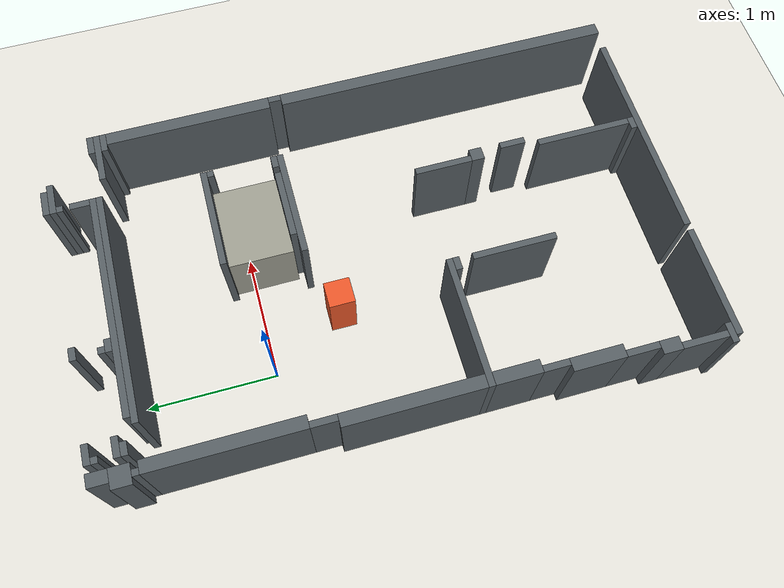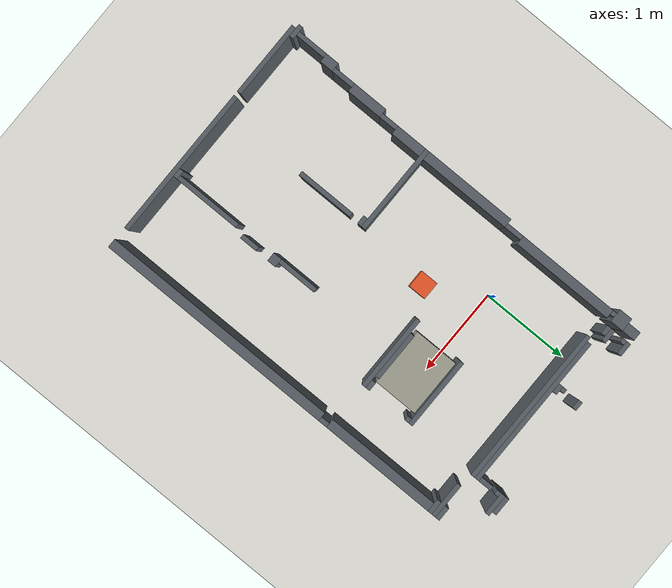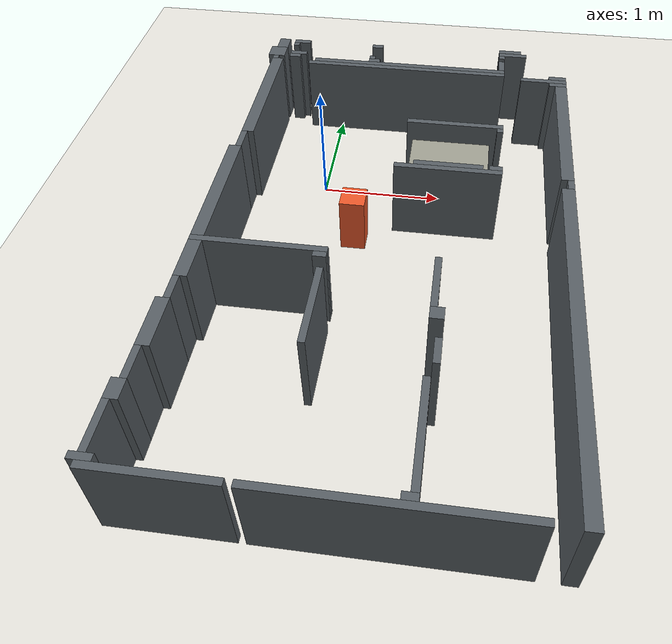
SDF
<sdf version="1.6">
 <world name="classroom_20261030_stress">
  <gravity>0 0 -9.81</gravity>
  <physics name="default_physics" default="true" type="ode">
   <max_step_size>0.001</max_step_size>
   <real_time_factor>1</real_time_factor>
   <real_time_update_rate>1000</real_time_update_rate>
  </physics>
  <scene><ambient>0.6 0.6 0.6 1</ambient><background>0.8 0.85 0.9 1</background><shadows>false</shadows></scene>
  <model name="ground_plane">
   <static>true</static>
   <link name="floor">
    <collision name="collision">
     <geometry><plane><normal>0 0 1</normal><size>20 20</size></plane></geometry>
    </collision>
    <visual name="visual">
     <geometry><plane><normal>0 0 1</normal><size>20 20</size></plane></geometry>
     <material><ambient>0.90 0.89 0.86 1</ambient><diffuse>0.90 0.89 0.86 1</diffuse></material>
    </visual>
   </link>
  </model>
  <model name="map_occupied_cells">
   <static>true</static>
   <link name="occupied_00">
    <pose>1.550000 1.375000 0.350000 0.000000 0.000000 0.000000</pose>
    <collision name="collision">
     <geometry><box><size>0.200000 0.050000 0.700000</size></box></geometry>
    </collision>
    <visual name="visual">
     <geometry><box><size>0.200000 0.050000 0.700000</size></box></geometry>
     <material><ambient>0.34 0.37 0.39 1</ambient><diffuse>0.34 0.37 0.39 1</diffuse></material>
    </visual>
   </link>
   <link name="occupied_01">
    <pose>-0.600000 1.275000 0.350000 0.000000 0.000000 0.000000</pose>
    <collision name="collision">
     <geometry><box><size>0.100000 0.150000 0.700000</size></box></geometry>
    </collision>
    <visual name="visual">
     <geometry><box><size>0.100000 0.150000 0.700000</size></box></geometry>
     <material><ambient>0.34 0.37 0.39 1</ambient><diffuse>0.34 0.37 0.39 1</diffuse></material>
    </visual>
   </link>
   <link name="occupied_02">
    <pose>-0.425000 1.325000 0.350000 0.000000 0.000000 0.000000</pose>
    <collision name="collision">
     <geometry><box><size>0.150000 0.050000 0.700000</size></box></geometry>
    </collision>
    <visual name="visual">
     <geometry><box><size>0.150000 0.050000 0.700000</size></box></geometry>
     <material><ambient>0.34 0.37 0.39 1</ambient><diffuse>0.34 0.37 0.39 1</diffuse></material>
    </visual>
   </link>
   <link name="occupied_03">
    <pose>0.300000 1.325000 0.350000 0.000000 0.000000 0.000000</pose>
    <collision name="collision">
     <geometry><box><size>0.100000 0.050000 0.700000</size></box></geometry>
    </collision>
    <visual name="visual">
     <geometry><box><size>0.100000 0.050000 0.700000</size></box></geometry>
     <material><ambient>0.34 0.37 0.39 1</ambient><diffuse>0.34 0.37 0.39 1</diffuse></material>
    </visual>
   </link>
   <link name="occupied_04">
    <pose>1.575000 1.325000 0.350000 0.000000 0.000000 0.000000</pose>
    <collision name="collision">
     <geometry><box><size>0.250000 0.050000 0.700000</size></box></geometry>
    </collision>
    <visual name="visual">
     <geometry><box><size>0.250000 0.050000 0.700000</size></box></geometry>
     <material><ambient>0.34 0.37 0.39 1</ambient><diffuse>0.34 0.37 0.39 1</diffuse></material>
    </visual>
   </link>
   <link name="occupied_05">
    <pose>-0.475000 1.275000 0.350000 0.000000 0.000000 0.000000</pose>
    <collision name="collision">
     <geometry><box><size>0.050000 0.050000 0.700000</size></box></geometry>
    </collision>
    <visual name="visual">
     <geometry><box><size>0.050000 0.050000 0.700000</size></box></geometry>
     <material><ambient>0.34 0.37 0.39 1</ambient><diffuse>0.34 0.37 0.39 1</diffuse></material>
    </visual>
   </link>
   <link name="occupied_06">
    <pose>1.475000 1.275000 0.350000 0.000000 0.000000 0.000000</pose>
    <collision name="collision">
     <geometry><box><size>0.050000 0.050000 0.700000</size></box></geometry>
    </collision>
    <visual name="visual">
     <geometry><box><size>0.050000 0.050000 0.700000</size></box></geometry>
     <material><ambient>0.34 0.37 0.39 1</ambient><diffuse>0.34 0.37 0.39 1</diffuse></material>
    </visual>
   </link>
   <link name="occupied_07">
    <pose>-0.625000 1.125000 0.350000 0.000000 0.000000 0.000000</pose>
    <collision name="collision">
     <geometry><box><size>0.150000 0.150000 0.700000</size></box></geometry>
    </collision>
    <visual name="visual">
     <geometry><box><size>0.150000 0.150000 0.700000</size></box></geometry>
     <material><ambient>0.34 0.37 0.39 1</ambient><diffuse>0.34 0.37 0.39 1</diffuse></material>
    </visual>
   </link>
   <link name="occupied_08">
    <pose>1.475000 1.125000 0.350000 0.000000 0.000000 0.000000</pose>
    <collision name="collision">
     <geometry><box><size>0.050000 0.150000 0.700000</size></box></geometry>
    </collision>
    <visual name="visual">
     <geometry><box><size>0.050000 0.150000 0.700000</size></box></geometry>
     <material><ambient>0.34 0.37 0.39 1</ambient><diffuse>0.34 0.37 0.39 1</diffuse></material>
    </visual>
   </link>
   <link name="occupied_09">
    <pose>-0.425000 1.125000 0.350000 0.000000 0.000000 0.000000</pose>
    <collision name="collision">
     <geometry><box><size>0.150000 0.050000 0.700000</size></box></geometry>
    </collision>
    <visual name="visual">
     <geometry><box><size>0.150000 0.050000 0.700000</size></box></geometry>
     <material><ambient>0.34 0.37 0.39 1</ambient><diffuse>0.34 0.37 0.39 1</diffuse></material>
    </visual>
   </link>
   <link name="occupied_10">
    <pose>0.275000 1.125000 0.350000 0.000000 0.000000 0.000000</pose>
    <collision name="collision">
     <geometry><box><size>0.050000 0.050000 0.700000</size></box></geometry>
    </collision>
    <visual name="visual">
     <geometry><box><size>0.050000 0.050000 0.700000</size></box></geometry>
     <material><ambient>0.34 0.37 0.39 1</ambient><diffuse>0.34 0.37 0.39 1</diffuse></material>
    </visual>
   </link>
   <link name="occupied_11">
    <pose>-0.450000 1.075000 0.350000 0.000000 0.000000 0.000000</pose>
    <collision name="collision">
     <geometry><box><size>0.100000 0.050000 0.700000</size></box></geometry>
    </collision>
    <visual name="visual">
     <geometry><box><size>0.100000 0.050000 0.700000</size></box></geometry>
     <material><ambient>0.34 0.37 0.39 1</ambient><diffuse>0.34 0.37 0.39 1</diffuse></material>
    </visual>
   </link>
   <link name="occupied_12">
    <pose>0.300000 1.075000 0.350000 0.000000 0.000000 0.000000</pose>
    <collision name="collision">
     <geometry><box><size>0.100000 0.050000 0.700000</size></box></geometry>
    </collision>
    <visual name="visual">
     <geometry><box><size>0.100000 0.050000 0.700000</size></box></geometry>
     <material><ambient>0.34 0.37 0.39 1</ambient><diffuse>0.34 0.37 0.39 1</diffuse></material>
    </visual>
   </link>
   <link name="occupied_13">
    <pose>-0.625000 1.025000 0.350000 0.000000 0.000000 0.000000</pose>
    <collision name="collision">
     <geometry><box><size>0.050000 0.050000 0.700000</size></box></geometry>
    </collision>
    <visual name="visual">
     <geometry><box><size>0.050000 0.050000 0.700000</size></box></geometry>
     <material><ambient>0.34 0.37 0.39 1</ambient><diffuse>0.34 0.37 0.39 1</diffuse></material>
    </visual>
   </link>
   <link name="occupied_14">
    <pose>0.625000 1.025000 0.350000 0.000000 0.000000 0.000000</pose>
    <collision name="collision">
     <geometry><box><size>1.750000 0.050000 0.700000</size></box></geometry>
    </collision>
    <visual name="visual">
     <geometry><box><size>1.750000 0.050000 0.700000</size></box></geometry>
     <material><ambient>0.34 0.37 0.39 1</ambient><diffuse>0.34 0.37 0.39 1</diffuse></material>
    </visual>
   </link>
   <link name="occupied_15">
    <pose>-0.600000 0.425000 0.350000 0.000000 0.000000 0.000000</pose>
    <collision name="collision">
     <geometry><box><size>0.100000 1.150000 0.700000</size></box></geometry>
    </collision>
    <visual name="visual">
     <geometry><box><size>0.100000 1.150000 0.700000</size></box></geometry>
     <material><ambient>0.34 0.37 0.39 1</ambient><diffuse>0.34 0.37 0.39 1</diffuse></material>
    </visual>
   </link>
   <link name="occupied_16">
    <pose>0.600000 0.975000 0.350000 0.000000 0.000000 0.000000</pose>
    <collision name="collision">
     <geometry><box><size>1.800000 0.050000 0.700000</size></box></geometry>
    </collision>
    <visual name="visual">
     <geometry><box><size>1.800000 0.050000 0.700000</size></box></geometry>
     <material><ambient>0.34 0.37 0.39 1</ambient><diffuse>0.34 0.37 0.39 1</diffuse></material>
    </visual>
   </link>
   <link name="occupied_17">
    <pose>1.975000 0.975000 0.350000 0.000000 0.000000 0.000000</pose>
    <collision name="collision">
     <geometry><box><size>0.150000 0.050000 0.700000</size></box></geometry>
    </collision>
    <visual name="visual">
     <geometry><box><size>0.150000 0.050000 0.700000</size></box></geometry>
     <material><ambient>0.34 0.37 0.39 1</ambient><diffuse>0.34 0.37 0.39 1</diffuse></material>
    </visual>
   </link>
   <link name="occupied_18">
    <pose>1.850000 0.925000 0.350000 0.000000 0.000000 0.000000</pose>
    <collision name="collision">
     <geometry><box><size>0.400000 0.050000 0.700000</size></box></geometry>
    </collision>
    <visual name="visual">
     <geometry><box><size>0.400000 0.050000 0.700000</size></box></geometry>
     <material><ambient>0.34 0.37 0.39 1</ambient><diffuse>0.34 0.37 0.39 1</diffuse></material>
    </visual>
   </link>
   <link name="occupied_19">
    <pose>1.975000 0.875000 0.350000 0.000000 0.000000 0.000000</pose>
    <collision name="collision">
     <geometry><box><size>0.150000 0.050000 0.700000</size></box></geometry>
    </collision>
    <visual name="visual">
     <geometry><box><size>0.150000 0.050000 0.700000</size></box></geometry>
     <material><ambient>0.34 0.37 0.39 1</ambient><diffuse>0.34 0.37 0.39 1</diffuse></material>
    </visual>
   </link>
   <link name="occupied_20">
    <pose>2.000000 0.200000 0.350000 0.000000 0.000000 0.000000</pose>
    <collision name="collision">
     <geometry><box><size>0.100000 1.300000 0.700000</size></box></geometry>
    </collision>
    <visual name="visual">
     <geometry><box><size>0.100000 1.300000 0.700000</size></box></geometry>
     <material><ambient>0.34 0.37 0.39 1</ambient><diffuse>0.34 0.37 0.39 1</diffuse></material>
    </visual>
   </link>
   <link name="occupied_21">
    <pose>1.100000 0.175000 0.350000 0.000000 0.000000 0.000000</pose>
    <collision name="collision">
     <geometry><box><size>0.800000 0.050000 0.700000</size></box></geometry>
    </collision>
    <visual name="visual">
     <geometry><box><size>0.800000 0.050000 0.700000</size></box></geometry>
     <material><ambient>0.34 0.37 0.39 1</ambient><diffuse>0.34 0.37 0.39 1</diffuse></material>
    </visual>
   </link>
   <link name="occupied_22">
    <pose>1.475000 0.125000 0.350000 0.000000 0.000000 0.000000</pose>
    <collision name="collision">
     <geometry><box><size>0.050000 0.050000 0.700000</size></box></geometry>
    </collision>
    <visual name="visual">
     <geometry><box><size>0.050000 0.050000 0.700000</size></box></geometry>
     <material><ambient>0.34 0.37 0.39 1</ambient><diffuse>0.34 0.37 0.39 1</diffuse></material>
    </visual>
   </link>
   <link name="occupied_23">
    <pose>-0.625000 -0.250000 0.350000 0.000000 0.000000 0.000000</pose>
    <collision name="collision">
     <geometry><box><size>0.050000 0.200000 0.700000</size></box></geometry>
    </collision>
    <visual name="visual">
     <geometry><box><size>0.050000 0.200000 0.700000</size></box></geometry>
     <material><ambient>0.34 0.37 0.39 1</ambient><diffuse>0.34 0.37 0.39 1</diffuse></material>
    </visual>
   </link>
   <link name="occupied_24">
    <pose>-0.650000 -0.875000 0.350000 0.000000 0.000000 0.000000</pose>
    <collision name="collision">
     <geometry><box><size>0.100000 1.050000 0.700000</size></box></geometry>
    </collision>
    <visual name="visual">
     <geometry><box><size>0.100000 1.050000 0.700000</size></box></geometry>
     <material><ambient>0.34 0.37 0.39 1</ambient><diffuse>0.34 0.37 0.39 1</diffuse></material>
    </visual>
   </link>
   <link name="occupied_25">
    <pose>1.075000 -0.375000 0.350000 0.000000 0.000000 0.000000</pose>
    <collision name="collision">
     <geometry><box><size>0.550000 0.050000 0.700000</size></box></geometry>
    </collision>
    <visual name="visual">
     <geometry><box><size>0.550000 0.050000 0.700000</size></box></geometry>
     <material><ambient>0.34 0.37 0.39 1</ambient><diffuse>0.34 0.37 0.39 1</diffuse></material>
    </visual>
   </link>
   <link name="occupied_26">
    <pose>1.450000 -0.375000 0.350000 0.000000 0.000000 0.000000</pose>
    <collision name="collision">
     <geometry><box><size>0.100000 0.050000 0.700000</size></box></geometry>
    </collision>
    <visual name="visual">
     <geometry><box><size>0.100000 0.050000 0.700000</size></box></geometry>
     <material><ambient>0.34 0.37 0.39 1</ambient><diffuse>0.34 0.37 0.39 1</diffuse></material>
    </visual>
   </link>
   <link name="occupied_27">
    <pose>1.075000 -0.425000 0.350000 0.000000 0.000000 0.000000</pose>
    <collision name="collision">
     <geometry><box><size>0.850000 0.050000 0.700000</size></box></geometry>
    </collision>
    <visual name="visual">
     <geometry><box><size>0.850000 0.050000 0.700000</size></box></geometry>
     <material><ambient>0.34 0.37 0.39 1</ambient><diffuse>0.34 0.37 0.39 1</diffuse></material>
    </visual>
   </link>
   <link name="occupied_28">
    <pose>2.025000 -0.500000 0.350000 0.000000 0.000000 0.000000</pose>
    <collision name="collision">
     <geometry><box><size>0.050000 0.100000 0.700000</size></box></geometry>
    </collision>
    <visual name="visual">
     <geometry><box><size>0.050000 0.100000 0.700000</size></box></geometry>
     <material><ambient>0.34 0.37 0.39 1</ambient><diffuse>0.34 0.37 0.39 1</diffuse></material>
    </visual>
   </link>
   <link name="occupied_29">
    <pose>2.000000 -1.900000 0.350000 0.000000 0.000000 0.000000</pose>
    <collision name="collision">
     <geometry><box><size>0.100000 2.700000 0.700000</size></box></geometry>
    </collision>
    <visual name="visual">
     <geometry><box><size>0.100000 2.700000 0.700000</size></box></geometry>
     <material><ambient>0.34 0.37 0.39 1</ambient><diffuse>0.34 0.37 0.39 1</diffuse></material>
    </visual>
   </link>
   <link name="occupied_30">
    <pose>-0.200000 -1.425000 0.350000 0.000000 0.000000 0.000000</pose>
    <collision name="collision">
     <geometry><box><size>1.000000 0.050000 0.700000</size></box></geometry>
    </collision>
    <visual name="visual">
     <geometry><box><size>1.000000 0.050000 0.700000</size></box></geometry>
     <material><ambient>0.34 0.37 0.39 1</ambient><diffuse>0.34 0.37 0.39 1</diffuse></material>
    </visual>
   </link>
   <link name="occupied_31">
    <pose>1.075000 -1.625000 0.350000 0.000000 0.000000 0.000000</pose>
    <collision name="collision">
     <geometry><box><size>0.050000 0.450000 0.700000</size></box></geometry>
    </collision>
    <visual name="visual">
     <geometry><box><size>0.050000 0.450000 0.700000</size></box></geometry>
     <material><ambient>0.34 0.37 0.39 1</ambient><diffuse>0.34 0.37 0.39 1</diffuse></material>
    </visual>
   </link>
   <link name="occupied_32">
    <pose>-0.650000 -1.625000 0.350000 0.000000 0.000000 0.000000</pose>
    <collision name="collision">
     <geometry><box><size>0.100000 0.350000 0.700000</size></box></geometry>
    </collision>
    <visual name="visual">
     <geometry><box><size>0.100000 0.350000 0.700000</size></box></geometry>
     <material><ambient>0.34 0.37 0.39 1</ambient><diffuse>0.34 0.37 0.39 1</diffuse></material>
    </visual>
   </link>
   <link name="occupied_33">
    <pose>0.250000 -1.475000 0.350000 0.000000 0.000000 0.000000</pose>
    <collision name="collision">
     <geometry><box><size>0.100000 0.050000 0.700000</size></box></geometry>
    </collision>
    <visual name="visual">
     <geometry><box><size>0.100000 0.050000 0.700000</size></box></geometry>
     <material><ambient>0.34 0.37 0.39 1</ambient><diffuse>0.34 0.37 0.39 1</diffuse></material>
    </visual>
   </link>
   <link name="occupied_34">
    <pose>0.275000 -1.925000 0.350000 0.000000 0.000000 0.000000</pose>
    <collision name="collision">
     <geometry><box><size>0.050000 0.650000 0.700000</size></box></geometry>
    </collision>
    <visual name="visual">
     <geometry><box><size>0.050000 0.650000 0.700000</size></box></geometry>
     <material><ambient>0.34 0.37 0.39 1</ambient><diffuse>0.34 0.37 0.39 1</diffuse></material>
    </visual>
   </link>
   <link name="occupied_35">
    <pose>-0.675000 -1.900000 0.350000 0.000000 0.000000 0.000000</pose>
    <collision name="collision">
     <geometry><box><size>0.050000 0.200000 0.700000</size></box></geometry>
    </collision>
    <visual name="visual">
     <geometry><box><size>0.050000 0.200000 0.700000</size></box></geometry>
     <material><ambient>0.34 0.37 0.39 1</ambient><diffuse>0.34 0.37 0.39 1</diffuse></material>
    </visual>
   </link>
   <link name="occupied_36">
    <pose>1.100000 -1.900000 0.350000 0.000000 0.000000 0.000000</pose>
    <collision name="collision">
     <geometry><box><size>0.100000 0.100000 0.700000</size></box></geometry>
    </collision>
    <visual name="visual">
     <geometry><box><size>0.100000 0.100000 0.700000</size></box></geometry>
     <material><ambient>0.34 0.37 0.39 1</ambient><diffuse>0.34 0.37 0.39 1</diffuse></material>
    </visual>
   </link>
   <link name="occupied_37">
    <pose>-0.700000 -2.200000 0.350000 0.000000 0.000000 0.000000</pose>
    <collision name="collision">
     <geometry><box><size>0.100000 0.400000 0.700000</size></box></geometry>
    </collision>
    <visual name="visual">
     <geometry><box><size>0.100000 0.400000 0.700000</size></box></geometry>
     <material><ambient>0.34 0.37 0.39 1</ambient><diffuse>0.34 0.37 0.39 1</diffuse></material>
    </visual>
   </link>
   <link name="occupied_38">
    <pose>1.125000 -2.200000 0.350000 0.000000 0.000000 0.000000</pose>
    <collision name="collision">
     <geometry><box><size>0.050000 0.200000 0.700000</size></box></geometry>
    </collision>
    <visual name="visual">
     <geometry><box><size>0.050000 0.200000 0.700000</size></box></geometry>
     <material><ambient>0.34 0.37 0.39 1</ambient><diffuse>0.34 0.37 0.39 1</diffuse></material>
    </visual>
   </link>
   <link name="occupied_39">
    <pose>-0.725000 -2.525000 0.350000 0.000000 0.000000 0.000000</pose>
    <collision name="collision">
     <geometry><box><size>0.050000 0.250000 0.700000</size></box></geometry>
    </collision>
    <visual name="visual">
     <geometry><box><size>0.050000 0.250000 0.700000</size></box></geometry>
     <material><ambient>0.34 0.37 0.39 1</ambient><diffuse>0.34 0.37 0.39 1</diffuse></material>
    </visual>
   </link>
   <link name="occupied_40">
    <pose>1.075000 -2.775000 0.350000 0.000000 0.000000 0.000000</pose>
    <collision name="collision">
     <geometry><box><size>0.050000 0.750000 0.700000</size></box></geometry>
    </collision>
    <visual name="visual">
     <geometry><box><size>0.050000 0.750000 0.700000</size></box></geometry>
     <material><ambient>0.34 0.37 0.39 1</ambient><diffuse>0.34 0.37 0.39 1</diffuse></material>
    </visual>
   </link>
   <link name="occupied_41">
    <pose>-0.750000 -2.725000 0.350000 0.000000 0.000000 0.000000</pose>
    <collision name="collision">
     <geometry><box><size>0.100000 0.150000 0.700000</size></box></geometry>
    </collision>
    <visual name="visual">
     <geometry><box><size>0.100000 0.150000 0.700000</size></box></geometry>
     <material><ambient>0.34 0.37 0.39 1</ambient><diffuse>0.34 0.37 0.39 1</diffuse></material>
    </visual>
   </link>
   <link name="occupied_42">
    <pose>-0.775000 -2.975000 0.350000 0.000000 0.000000 0.000000</pose>
    <collision name="collision">
     <geometry><box><size>0.050000 0.350000 0.700000</size></box></geometry>
    </collision>
    <visual name="visual">
     <geometry><box><size>0.050000 0.350000 0.700000</size></box></geometry>
     <material><ambient>0.34 0.37 0.39 1</ambient><diffuse>0.34 0.37 0.39 1</diffuse></material>
    </visual>
   </link>
   <link name="occupied_43">
    <pose>-0.775000 -3.175000 0.350000 0.000000 0.000000 0.000000</pose>
    <collision name="collision">
     <geometry><box><size>0.150000 0.050000 0.700000</size></box></geometry>
    </collision>
    <visual name="visual">
     <geometry><box><size>0.150000 0.050000 0.700000</size></box></geometry>
     <material><ambient>0.34 0.37 0.39 1</ambient><diffuse>0.34 0.37 0.39 1</diffuse></material>
    </visual>
   </link>
   <link name="occupied_44">
    <pose>1.050000 -3.175000 0.350000 0.000000 0.000000 0.000000</pose>
    <collision name="collision">
     <geometry><box><size>0.100000 0.050000 0.700000</size></box></geometry>
    </collision>
    <visual name="visual">
     <geometry><box><size>0.100000 0.050000 0.700000</size></box></geometry>
     <material><ambient>0.34 0.37 0.39 1</ambient><diffuse>0.34 0.37 0.39 1</diffuse></material>
    </visual>
   </link>
   <link name="occupied_45">
    <pose>-0.375000 -3.225000 0.350000 0.000000 0.000000 0.000000</pose>
    <collision name="collision">
     <geometry><box><size>0.850000 0.050000 0.700000</size></box></geometry>
    </collision>
    <visual name="visual">
     <geometry><box><size>0.850000 0.050000 0.700000</size></box></geometry>
     <material><ambient>0.34 0.37 0.39 1</ambient><diffuse>0.34 0.37 0.39 1</diffuse></material>
    </visual>
   </link>
   <link name="occupied_46">
    <pose>0.950000 -3.225000 0.350000 0.000000 0.000000 0.000000</pose>
    <collision name="collision">
     <geometry><box><size>1.700000 0.050000 0.700000</size></box></geometry>
    </collision>
    <visual name="visual">
     <geometry><box><size>1.700000 0.050000 0.700000</size></box></geometry>
     <material><ambient>0.34 0.37 0.39 1</ambient><diffuse>0.34 0.37 0.39 1</diffuse></material>
    </visual>
   </link>
  </model>
  <model name="inferred_center_object">
   <static>true</static>
   <link name="body">
    <pose>1.075000 -0.100000 0.260000 0.000000 0.000000 0.000000</pose>
    <collision name="collision">
     <geometry><box><size>0.650000 0.500000 0.520000</size></box></geometry>
    </collision>
    <visual name="visual">
     <geometry><box><size>0.650000 0.500000 0.520000</size></box></geometry>
     <material><ambient>0.62 0.62 0.57 1</ambient><diffuse>0.62 0.62 0.57 1</diffuse></material>
    </visual>
   </link>
  </model>
  <model name="stress_unmapped_crate_center">
   <static>true</static>
   <link name="body">
    <pose>0.350000 -0.600000 0.240000 0.000000 0.000000 0.000000</pose>
    <collision name="collision">
     <geometry><box><size>0.200000 0.200000 0.480000</size></box></geometry>
    </collision>
    <visual name="visual">
     <geometry><box><size>0.200000 0.200000 0.480000</size></box></geometry>
     <material><ambient>0.92 0.34 0.16 1</ambient><diffuse>0.92 0.34 0.16 1</diffuse></material>
    </visual>
   </link>
  </model>
  <light name="overhead" type="directional">
   <pose>0 0 6 0 0 0</pose>
   <diffuse>0.85 0.85 0.85 1</diffuse>
   <specular>0.1 0.1 0.1 1</specular>
   <direction>-0.3 0.1 -0.9</direction>
  </light>
  <plugin name="gazebo_state" filename="libgazebo_ros_state.so">
   <ros><namespace>/gazebo</namespace></ros>
   <update_rate>10.0</update_rate>
  </plugin>
 </world>
</sdf>
